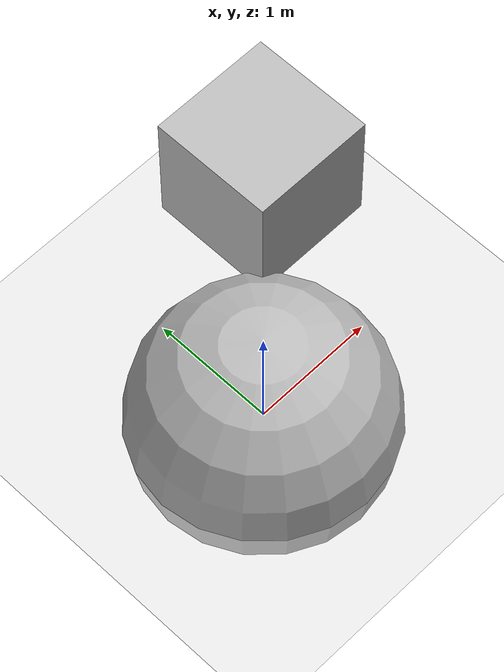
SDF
<?xml version="1.0" ?>
<sdf version="1.4">
  <world name="default">
    <!-- A global light source -->
    <scene>
      <sky>
        <clouds>
          <speed>12</speed>
        </clouds>
      </sky>
    </scene>

    <include>
      <uri>model://sun</uri>
    </include>
    <include>
      <uri>model://ground_plane</uri>
    </include>
    <model name="test_consumer">
      <pose> 1 1 1 0 0 0</pose>
      <link name="link">
        <inertial>
          <mass>1</mass>
          <inertia>
            <ixx>0.00058</ixx>
            <ixy>0</ixy>
            <ixz>0</ixz>
            <iyy>0.00058</iyy>
            <iyz>0</iyz>
            <izz>0.00019</izz>
          </inertia>
        </inertial>
        <collision name="collision">
          <geometry>
            <box>
              <size>1 1 1</size>
            </box>
          </geometry>
        </collision>
        <visual name="visual">
          <geometry>
            <box>
              <size>1 1 1</size>
            </box>
          </geometry>
        </visual>
        <sensor type="camera" name="object_detector">
          <plugin name="object_detector_plugin"
              filename="libiai_object_scanner.so">
            <update_rate>0.5</update_rate>
            <scanner_id>42</scanner_id>
            <range>4.2</range>
            <target_type>victim</target_type>
          </plugin>
        </sensor>
      </link>
      <plugin name="consumer"
              filename="libiai_battery_consumer.so">
            <default_consume>0.001</default_consume>
            <default_consumer_name>DEFAULT_CONSUMER</default_consumer_name>
      </plugin>

    </model>

    <model name="test_scanable">
      <link name="link">
        <inertial>
          <mass>1</mass>
          <inertia>
            <ixx>0.00058</ixx>
            <ixy>0</ixy>
            <ixz>0</ixz>
            <iyy>0.00058</iyy>
            <iyz>0</iyz>
            <izz>0.00019</izz>
          </inertia>
        </inertial>
        <collision name="collision">
          <geometry>
            <sphere>
              <radius>1</radius>
            </sphere>
          </geometry>
        </collision>
        <visual name="visual">
          <geometry>
            <sphere>
              <radius>1</radius>
            </sphere>
          </geometry>
        </visual>
      </link>
      <plugin name="scanable"
              filename="libiai_object_transmitter.so">
            <object_type>victim</object_type><!-- this is used to determine -->
            <absolute_detection>false</absolute_detection>
            <attribute key="otype" value="human"/>
            <attribute key="color" value="green"/>
            <attribute key="shape" value="sphere"/>
      </plugin>
    </model>
  </world>

</sdf>
